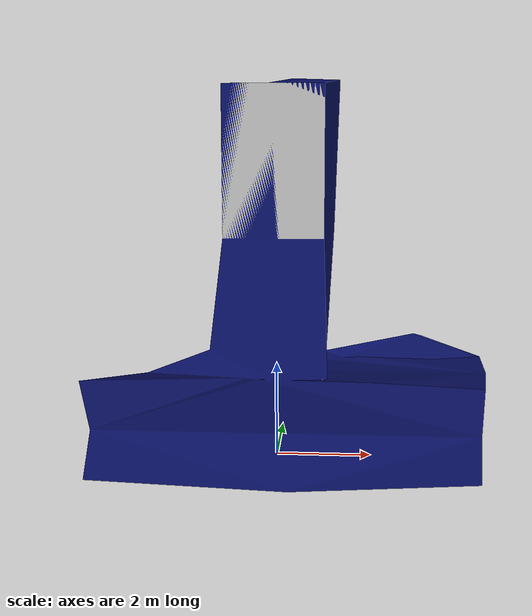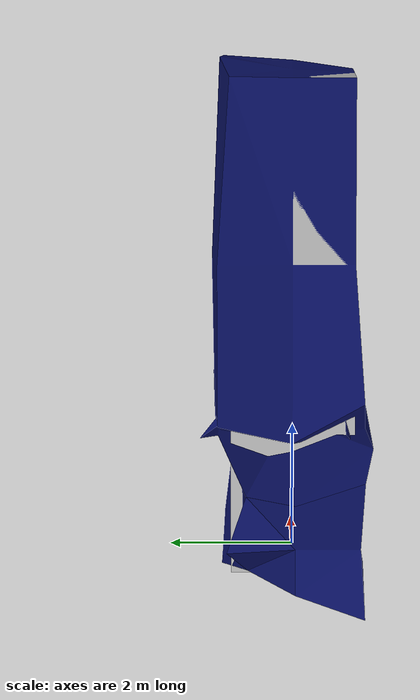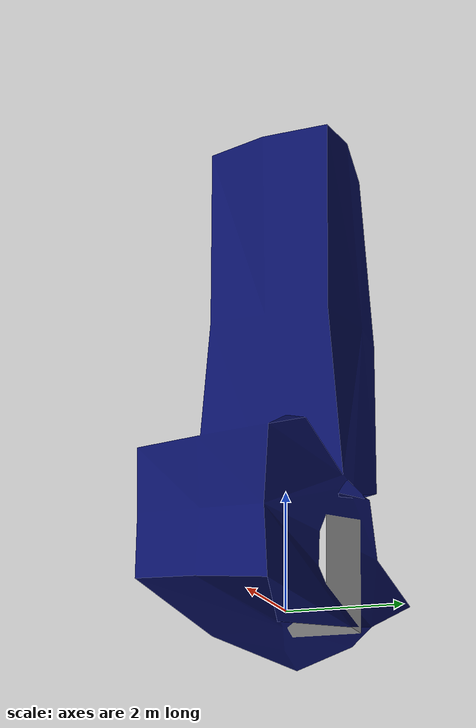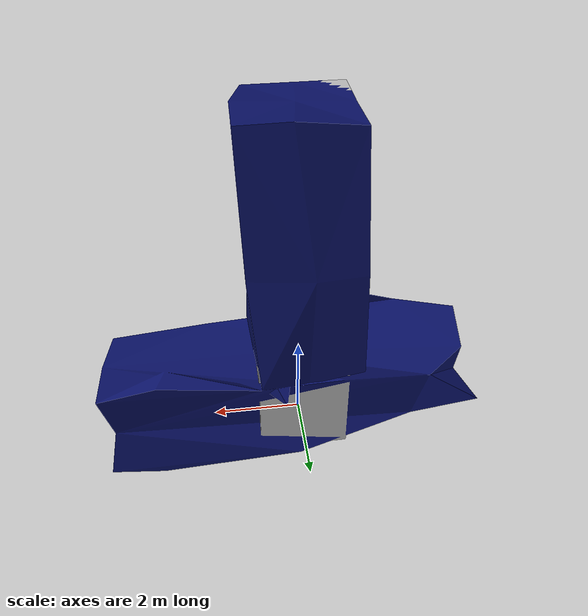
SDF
<?xml version='1.0' ?>
<sdf version='1.6'>
  <model name='Simple Block'>
    <pose>0 0 0 0 0 0</pose>
    <static>true</static>
    <link name="link">
      <collision name="collision">
        <geometry>
          <mesh>
            <uri>model://Simple Block/meshes/Simple Block.dae</uri>
            <scale>1 1 1</scale>
         </mesh>
        </geometry>
      </collision>
      <visual name="visual">
        <geometry>
          <mesh>
            <uri>model://Simple Block/meshes/Simple Block.dae</uri>
            <scale>1 1 1</scale>
         </mesh>
        </geometry>
      </visual>
    </link>
  </model>
 </sdf>
